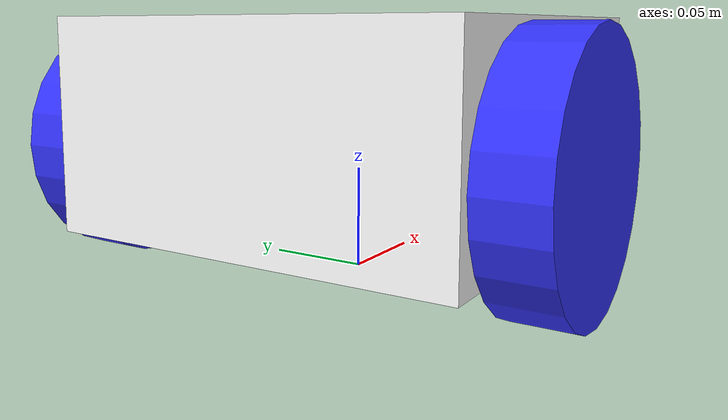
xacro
<?xml version="1.0"?>
<robot xmlns:xacro="http://www.ros.org/wiki/xacro" >

    <xacro:include filename="inertial_macros.xacro"/>

    <material name="white">
        <color rgba="1 1 1 1" />
    </material>

    <material name="orange">
        <color rgba="1 0.3 0.1 1"/>
    </material>

    <material name="blue">
        <color rgba="0.2 0.2 1 1"/>
    </material>

    <material name="black">
        <color rgba="0 0 0 1"/>
    </material>

    <material name="red">
        <color rgba="1 0 0 1"/>
    </material>

    <!-- BASE LINK -->

    <link name="base_link">

    </link>

    <!-- BASE_FOOTPRINT LINK -->
    <joint name="base_footprint_joint" type="fixed">
        <parent link="base_link"/>
        <child link="base_footprint"/>
        <origin xyz="0 0 0" rpy="0 0 0"/>
    </joint>

    <link name="base_footprint">
    </link>

    <!-- CHASSIS LINK -->

    <joint name="chassis_joint" type="fixed">
        <parent link="base_link"/>
        <child link="chassis"/>
        <origin xyz="-0.1 0 0"/>
    </joint>

    <link name="chassis">
        <visual>
            <origin xyz="0.1 0 0.075"/>
            <geometry>
                <box size="0.2 0.2 0.1"/>
            </geometry>
            <material name="white"/>
        </visual>
        <collision>
            <origin xyz="0.1 0 0.075"/>
            <geometry>
                <box size="0.2 0.2 0.1"/>
            </geometry>
        </collision>
        <xacro:inertial_box mass="0.5" x="0.2" y="0.2" z="0.1">
            <origin xyz="0.1 0 0.075" rpy="0 0 0"/>
        </xacro:inertial_box>
    </link>

    <gazebo reference="chassis">
        <material>Gazebo/White</material>
    </gazebo>

    <!-- LEFT WHEEL LINK -->

    <joint name="left_wheel_joint" type="continuous">
        <parent link="base_link"/>
        <child link="left_wheel"/>
        <origin xyz="-0.035 0.115 0.063" rpy="-${pi/2} 0 0" />
        <axis xyz="0 0 1"/>
    </joint>

    <link name="left_wheel">
        <visual>
            <geometry>
                <cylinder radius="0.06" length="0.03"/>
            </geometry>
            <material name="blue"/>
        </visual>
        <collision>
            <geometry>
                <cylinder radius="0.06" length="0.03"/>
            </geometry>
        </collision>
        <xacro:inertial_cylinder mass="0.1" length="0.06" radius="0.03">
            <origin xyz="0 0 0" rpy="0 0 0"/>
        </xacro:inertial_cylinder>
    </link>

    <gazebo reference="left_wheel">
        <material>Gazebo/Blue</material>
    </gazebo>

    <!-- RIGHT WHEEL LINK -->

    <joint name="right_wheel_joint" type="continuous">
        <parent link="base_link"/>
        <child link="right_wheel"/>
        <origin xyz="-0.035 -0.115 0.063" rpy="${pi/2} 0 0" />
        <axis xyz="0 0 -1"/>
    </joint>

    <link name="right_wheel">
        <visual>
            <geometry>
                <cylinder radius="0.06" length="0.03"/>
            </geometry>
            <material name="blue"/>
        </visual>
        <collision>
            <geometry>
                <cylinder radius="0.06" length="0.03"/>
            </geometry>
        </collision>
        <xacro:inertial_cylinder mass="0.1" length="0.06" radius="0.03">
            <origin xyz="0 0 0" rpy="0 0 0"/>
        </xacro:inertial_cylinder>
    </link>

    <gazebo reference="right_wheel">
        <material>Gazebo/Blue</material>
    </gazebo>

    <gazebo>
        <plugin name="joint_state_publisher" filename="libgazebo_ros_joint_state_publisher.so">
            <jointName>left_wheel,right_wheel</jointName>
        </plugin>
    </gazebo>

    <!-- CASTER WHEEL LINK -->

    <joint name="caster_wheel_joint" type="fixed">
        <parent link="chassis"/>
        <child link="caster_wheel"/>
        <origin xyz="0.161 0 0.02"/>
    </joint>

    <link name="caster_wheel">
        <visual>
            <geometry>
                <sphere radius="0.021"/>
            </geometry>
            <material name="black"/>
        </visual>
        <collision>
            <geometry>
                <sphere radius="0.021"/>
            </geometry>
        </collision>
        <xacro:inertial_sphere mass="0.1" radius="0.021">
            <origin xyz="0 0 0" rpy="0 0 0"/>
        </xacro:inertial_sphere>
    </link>

    <gazebo reference="caster_wheel">
        <material>Gazebo/Black</material>
        <mu1 value="0.001"/>
        <mu2 value="0.001"/>
    </gazebo>

</robot>
